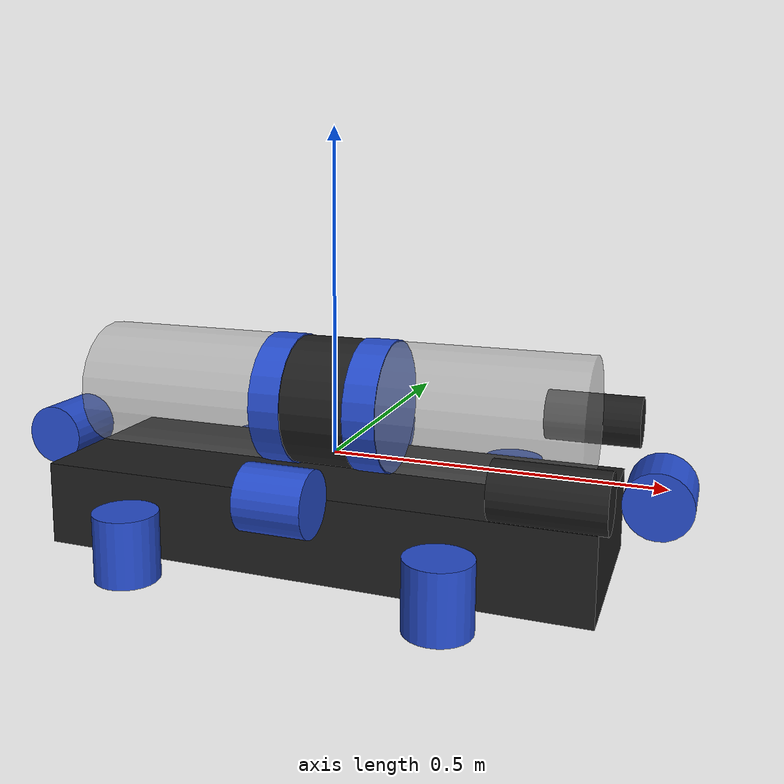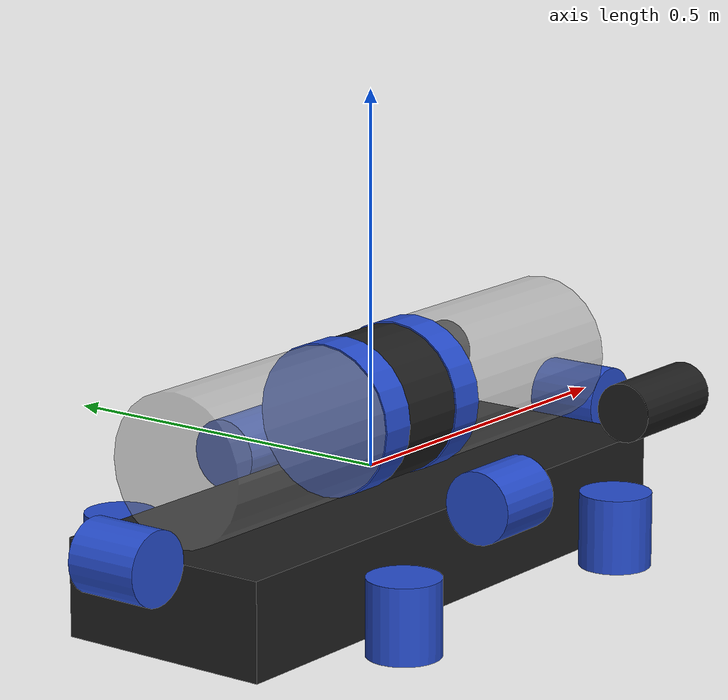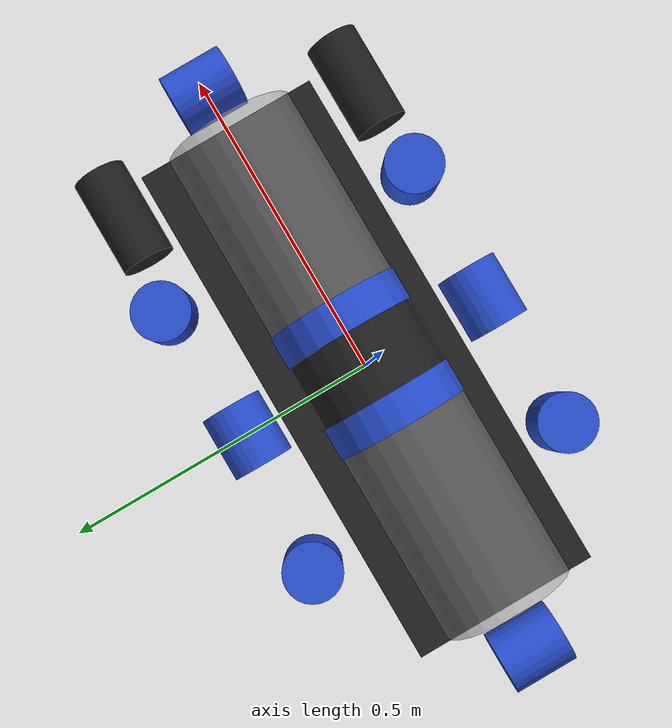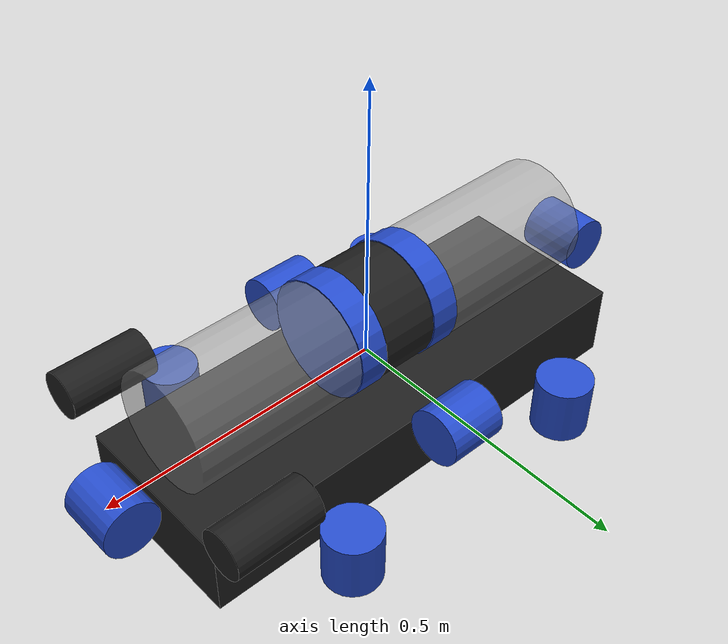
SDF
<?xml version='1.0'?>
<sdf version='1.6'>

  <model name='robosub_cobalt'>
    <pose>0 0 0.0 0 0 0</pose>
    <self_collide> 0 </self_collide>

    <joint name="hull_frame" type="fixed">
        <parent>frame</parent>
        <child>hull</child>
    </joint>

    <joint name='dive_front_left_frame' type="fixed">
        <parent>frame</parent>
        <child>dive_front_left</child>
    </joint>

    <joint name='dive_front_right_frame' type="fixed">
        <parent>frame</parent>
        <child>dive_front_right</child>
    </joint>

    <joint name='dive_back_left_frame' type="fixed">
        <parent>frame</parent>
        <child>dive_back_left</child>
    </joint>

    <joint name='dive_back_right_frame' type="fixed">
        <parent>frame</parent>
        <child>dive_back_right</child>
    </joint>

    <joint name='strafe_front_frame' type="fixed">
        <parent>frame</parent>
        <child>strafe_front</child>
    </joint>

    <joint name='strafe_back_frame' type="fixed">
        <parent>frame</parent>
        <child>strafe_back</child>
    </joint>

    <joint name='forward_left_frame' type="fixed">
        <parent>frame</parent>
        <child>forward_left</child>
    </joint>

    <joint name='forward_right_frame' type="fixed">
        <parent>frame</parent>
        <child>forward_right</child>
    </joint>

    <joint name='left_camera_frame' type="fixed">
        <parent>frame</parent>
        <child>left_camera</child>
    </joint>

    <joint name='right_camera_frame' type="fixed">
        <parent>frame</parent>
        <child>right_camera</child>
    </joint>

    <joint name='bottom_camera_frame' type="fixed">
        <parent>frame</parent>
        <child>bottom_camera</child>
    </joint>

    <joint name='hydrophone_h0_frame' type="fixed">
        <parent>frame</parent>
        <child>hydrophone_h0</child>
    </joint>

    <joint name='hydrophone_hx_frame' type="fixed">
        <parent>frame</parent>
        <child>hydrophone_hx</child>
    </joint>

    <joint name='hydrophone_hy_frame' type="fixed">
        <parent>frame</parent>
        <child>hydrophone_hy</child>
    </joint>

    <joint name='hydrophone_hz_frame' type="fixed">
        <parent>frame</parent>
        <child>hydrophone_hz</child>
    </joint>

    <joint name='imu_frame' type="fixed">
        <parent>frame</parent>
        <child>imu_link</child>
    </joint>

    <link name='hull'>
      <pose>0 0 .082 1.57079632679 0 1.57079632679 </pose>
      <inertial>
        <mass>10</mass>
      </inertial>

      <visual name='bulkhead_visual'>
        <geometry>
              <cylinder>
                <radius>0.1</radius>
                <length>.13</length>
              </cylinder>
        </geometry>
        <material>
            <script>
              <uri>file://media/materials/scripts/gazebo.material</uri>
              <name>Gazebo/Black</name>
            </script>
          </material>
      </visual>

      <visual name='front_ring_visual'>
      <pose>0 0 .075 0 0 0</pose>
        <geometry>
              <cylinder>
                <radius>0.102</radius>
                <length>.05</length>
              </cylinder>
        </geometry>
        <material>
            <script>
              <uri>file://media/materials/scripts/gazebo.material</uri>
              <name>Gazebo/Blue</name>
            </script>
          </material>
      </visual>
      <visual name='rear_ring_visual'>
      <pose>0 0 -.075 0 0 0</pose>
        <geometry>
              <cylinder>
                <radius>0.102</radius>
                <length>.05</length>
              </cylinder>
        </geometry>
        <material>
            <script>
              <uri>file://media/materials/scripts/gazebo.material</uri>
              <name>Gazebo/Blue</name>
            </script>
          </material>
      </visual>
      <visual name='front_tube_visual'>
      <pose>0 0 .235 0 0 0</pose>
        <geometry>
              <cylinder>
                <radius>0.1</radius>
                <length>.32</length>
              </cylinder>
        </geometry>
        <material>
            <script>
              <uri>file://media/materials/scripts/gazebo.material</uri>
              <name>Gazebo/GreyTransparent</name>
            </script>
            <diffuse>0.6 0.6 0.6 0.6</diffuse>
          </material>
      </visual>

      <visual name='rear_tube_visual'>
      <pose>0 0 -.235 0 0 0</pose>
        <geometry>
              <cylinder>
                <radius>0.1</radius>
                <length>.32</length>
              </cylinder>
        </geometry>
        <material>
            <script>
              <uri>file://media/materials/scripts/gazebo.material</uri>
              <name>Gazebo/GreyTransparent</name>
            </script>
            <diffuse>0.6 0.6 0.6 0.6</diffuse>
          </material>
      </visual>
      <collision name='hull_collision'>
        <geometry>
              <cylinder>
                <radius>0.1</radius>
                <length>.77</length>
              </cylinder>
            </geometry>
      </collision>
      <velocity_decay>
          <linear>0.002</linear>
          <angular>0.002</angular>
      </velocity_decay>
    </link>

    <link name='hydrophone_h0'>
      <pose> 0 0 0 0 0 0 </pose>
      <inertial>
        <mass> 0.001 </mass>
      </inertial>
    </link>

    <link name='hydrophone_hx'>
      <pose> 0.015 0 0 0 0 0 </pose>
      <inertial>
        <mass> 0.001 </mass>
      </inertial>
    </link>

    <link name='hydrophone_hy'>
      <pose> 0 0.015 0 0 0 0 </pose>
      <inertial>
        <mass> 0.001 </mass>
      </inertial>
    </link>

    <link name='hydrophone_hz'>
      <pose> 0 0 0.015 0 0 0 </pose>
      <inertial>
        <mass> 0.001 </mass>
      </inertial>
    </link>

    <link name='frame'>
      <pose>0 0 -0.088 0 0 0</pose>
      <inertial>
        <mass>16.5</mass>
      </inertial>

      <visual name='frame_visual'>
        <geometry>
              <box>
                <size>.85 .3 .13</size>
              </box>
            </geometry>
          <material>
            <script>
              <uri>file://media/materials/scripts/gazebo.material</uri>
              <name>Gazebo/FlatBlack</name>
            </script>
          </material>
      </visual>

      <collision name='frame_collision'>
        <geometry>
              <box>
                <size>.85 .3 .13</size>
              </box>
            </geometry>
      </collision>
      <velocity_decay>
          <linear>0.002</linear>
          <angular>0.002</angular>
      </velocity_decay>
    </link>

    <link name='dive_front_left'>
      <pose>0.235 0.23 -0.1 0 3.14159 0</pose>
      <inertial>
        <mass>0.344</mass>
      </inertial>
      <visual name='dive_front_left_visual'>
        <geometry>
          <cylinder>
            <radius>0.0485</radius>
            <length>0.101</length>
          </cylinder>
        </geometry>
      <material>
        <script>
          <uri>file://media/materials/scripts/gazebo.material</uri>
          <name>Gazebo/Blue</name>
        </script>
      </material>
      </visual>
      <collision name='dive_front_left_collision'>
        <geometry>
          <cylinder>
            <radius>0.0485</radius>
            <length>0.101</length>
          </cylinder>
        </geometry>
      </collision>
    </link>

    <link name='dive_front_right'>
      <pose>0.235 -0.23 -0.1 0 3.14159 0</pose>
      <inertial>
        <mass>0.344</mass>
      </inertial>
      <visual name='dive_front_right_visual'>
        <geometry>
          <cylinder>
            <radius>0.0485</radius>
            <length>0.101</length>
          </cylinder>
        </geometry>
      <material>
        <script>
          <uri>file://media/materials/scripts/gazebo.material</uri>
          <name>Gazebo/Blue</name>
        </script>
      </material>
      </visual>
      <collision name='dive_front_right_collision'>
        <geometry>
          <cylinder>
            <radius>0.0485</radius>
            <length>0.101</length>
          </cylinder>
        </geometry>
      </collision>
    </link>

    <link name='dive_back_left'>
      <pose>-0.235 0.23 -0.1 0 3.14159 0</pose>
      <inertial>
        <mass>0.344</mass>
      </inertial>
      <visual name='dive_back_left_visual'>
        <geometry>
          <cylinder>
            <radius>0.0485</radius>
            <length>0.101</length>
          </cylinder>
        </geometry>
      <material>
        <script>
          <uri>file://media/materials/scripts/gazebo.material</uri>
          <name>Gazebo/Blue</name>
        </script>
      </material>
      </visual>
      <collision name='dive_back_left_collision'>
        <geometry>
          <cylinder>
            <radius>0.0485</radius>
            <length>0.101</length>
          </cylinder>
        </geometry>
      </collision>
    </link>

    <link name='dive_back_right'>
      <pose>-0.235 -0.23 -0.1 0 3.14159 0</pose>
      <inertial>
        <mass>0.344</mass>
      </inertial>
      <visual name='dive_back_right_visual'>
        <geometry>
          <cylinder>
            <radius>0.0485</radius>
            <length>0.101</length>
          </cylinder>
        </geometry>
      <material>
        <script>
          <uri>file://media/materials/scripts/gazebo.material</uri>
          <name>Gazebo/Blue</name>
        </script>
      </material>
      </visual>
      <collision name='dive_back_right_collision'>
        <geometry>
          <cylinder>
            <radius>0.0485</radius>
            <length>0.101</length>
          </cylinder>
        </geometry>
      </collision>
    </link>

    <link name='strafe_front'>
      <pose>0.49 0 -0.01 -1.57079632679 0 0</pose>
      <inertial>
        <mass>0.344</mass>
      </inertial>
      <visual name='strafe_front_visual'>
        <geometry>
          <cylinder>
            <radius>0.0485</radius>
            <length>0.101</length>
          </cylinder>
        </geometry>
      <material>
        <script>
          <uri>file://media/materials/scripts/gazebo.material</uri>
          <name>Gazebo/Blue</name>
        </script>
      </material>
      </visual>
      <collision name='strafe_front_collision'>
        <geometry>
          <cylinder>
            <radius>0.0485</radius>
            <length>0.101</length>
          </cylinder>
        </geometry>
      </collision>
    </link>

    <link name='strafe_back'>
      <pose>-0.49 0 -0.01 -1.57079632679 0 0</pose>
      <inertial>
        <mass>0.344</mass>
      </inertial>
      <visual name='strafe_back_visual'>
        <geometry>
          <cylinder>
            <radius>0.0485</radius>
            <length>0.101</length>
          </cylinder>
        </geometry>
      <material>
        <script>
          <uri>file://media/materials/scripts/gazebo.material</uri>
          <name>Gazebo/Blue</name>
        </script>
      </material>
      </visual>
      <collision name='strafe_back_collision'>
        <geometry>
          <cylinder>
            <radius>0.0485</radius>
            <length>0.101</length>
          </cylinder>
        </geometry>
      </collision>
    </link>

    <link name='forward_left'>
      <pose>0 0.2075 -0.01 0 -1.57079632679 0</pose>
      <inertial>
        <mass>0.344</mass>
      </inertial>
      <visual name='forward_left_visual'>
        <geometry>
          <cylinder>
            <radius>0.0485</radius>
            <length>0.101</length>
          </cylinder>
        </geometry>
      <material>
        <script>
          <uri>file://media/materials/scripts/gazebo.material</uri>
          <name>Gazebo/Blue</name>
        </script>
      </material>
      </visual>
      <collision name='forward_left_collision'>
        <geometry>
          <cylinder>
            <radius>0.0485</radius>
            <length>0.101</length>
          </cylinder>
        </geometry>
      </collision>
    </link>

    <link name='forward_right'>
      <pose>0 -0.2075 -0.01 0 -1.57079632679 0</pose>
      <inertial>
        <mass>0.344</mass>
      </inertial>
      <visual name='forward_right_visual'>
        <geometry>
          <cylinder>
            <radius>0.0485</radius>
            <length>0.101</length>
          </cylinder>
        </geometry>
      <material>
        <script>
          <uri>file://media/materials/scripts/gazebo.material</uri>
          <name>Gazebo/Blue</name>
        </script>
      </material>
      </visual>
      <collision name='forward_right_collision'>
        <geometry>
          <cylinder>
            <radius>0.0485</radius>
            <length>0.101</length>
          </cylinder>
        </geometry>
      </collision>
    </link>

    <link name='left_camera'>
      <pose>0.37 0.20 0.04 0 1.57079632679 0</pose>
      <inertial>
        <mass>0.73</mass>
      </inertial>
      <visual name='left_camera_visual'>
        <geometry>
          <cylinder>
            <radius>0.0405</radius>
            <length>0.15</length>
          </cylinder>
        </geometry>
      <material>
        <script>
          <uri>file://media/materials/scripts/gazebo.material</uri>
          <name>Gazebo/Black</name>
        </script>
      </material>
      </visual>
      <collision name='left_camera_collision'>
        <geometry>
          <cylinder>
            <radius>0.0405</radius>
            <length>0.15</length>
          </cylinder>
        </geometry>
      </collision>
      <sensor name="left" type="wideanglecamera">
          <pose>0 0 0.14 0 -1.570796 0</pose>
          <camera>
              <horizontal_fov>3.1415</horizontal_fov>
              <image>
                  <width>1384</width>
                  <height>1032</height>
              </image>
              <clip>
                  <near>0.001</near>
                  <far>100</far>
              </clip>
              <lens>
                  <type>custom</type>
                  <custom_function>
                      <c1>685.4</c1>
                      <c2>525.2</c2>
                      <f>307.53251966606937</f>
                      <fun>tan</fun>
                  </custom_function>
                  <scale_to_hfov>true</scale_to_hfov>
                  <cutoff_angle>1.57075</cutoff_angle>
                  <env_texture_size>512</env_texture_size>
              </lens>
              <distortion>
                <k1>-.16492342967649815</k1>
                <k2>0.016187172468110342</k2>
                <k3>-0.00038951913220274415</k3>
                <p1>0</p1>
                <p2>0</p2>
                <center>0 0</center>
              </distortion>
          </camera>
          <plugin name="left_camera_controller" filename="libgazebo_ros_camera.so">
              <cameraName>left</cameraName>
              <imageTopicName>/camera/left/image_raw</imageTopicName>
          </plugin>
          <always_on>1</always_on>
          <update_rate>5</update_rate>
      </sensor>
    </link>

    <link name='right_camera'>
      <pose>0.37 -0.20 0.04 0 1.57079632679 0</pose>
      <inertial>
        <mass>0.73</mass>
      </inertial>
      <visual name='right_camera_visual'>
        <geometry>
          <cylinder>
            <radius>0.0405</radius>
            <length>0.15</length>
          </cylinder>
        </geometry>
      <material>
        <script>
          <uri>file://media/materials/scripts/gazebo.material</uri>
          <name>Gazebo/Black</name>
        </script>
      </material>
      </visual>
      <collision name='right_camera_collision'>
        <geometry>
          <cylinder>
            <radius>0.0405</radius>
            <length>0.15</length>
          </cylinder>
        </geometry>
      </collision>
      <sensor name="right" type="wideanglecamera">
          <pose>0 0 0.14 0 -1.570796 0</pose>
          <camera>
              <horizontal_fov>3.1415</horizontal_fov>
              <image>
                  <width>1384</width>
                  <height>1032</height>
              </image>
              <clip>
                  <near>0.1</near>
                  <far>100</far>
              </clip>
              <lens>
                  <type>custom</type>
                  <custom_function>
                      <c1>667.1</c1>
                      <c2>536.7</c2>
                      <f>317.86251966606937</f>
                      <fun>tan</fun>
                  </custom_function>
                  <scale_to_hfov>true</scale_to_hfov>
                  <cutoff_angle>1.57075</cutoff_angle>
                  <env_texture_size>512</env_texture_size>
              </lens>
              <distortion>
                <k1>-.16492342967649815</k1>
                <k2>0.016187172468110342</k2>
                <k3>-0.00038951913220274415</k3>
                <p1>0</p1>
                <p2>0</p2>
                <center>0 0</center>
              </distortion>
          </camera>
          <plugin name="right_camera_controller" filename="libgazebo_ros_camera.so">
              <cameraName>right</cameraName>
              <imageTopicName>/camera/right/image_raw</imageTopicName>
          </plugin>
          <always_on>1</always_on>
          <update_rate>5</update_rate>
      </sensor>
    </link>

    <link name='bottom_camera'>
      <pose>0 0 -0.1 0 3.14159265358 0</pose>
      <inertial>
        <mass>0.73</mass>
      </inertial>
      <visual name='bottom_camera_visual'>
        <geometry>
          <cylinder>
            <radius>0.0405</radius>
            <length>0.15</length>
          </cylinder>
        </geometry>
      <material>
        <script>
          <uri>file://media/materials/scripts/gazebo.material</uri>
          <name>Gazebo/Black</name>
        </script>
      </material>
      </visual>
      <collision name='bottom_camera_collision'>
        <geometry>
          <cylinder>
            <radius>0.0405</radius>
            <length>0.15</length>
          </cylinder>
        </geometry>
      </collision>
      <sensor name="bottom" type="wideanglecamera">
          <pose>0 0 0.14 0 -1.570796 0</pose>
          <camera>
              <horizontal_fov>3.1415</horizontal_fov>
              <image>
                  <width>1384</width>
                  <height>1032</height>
              </image>
              <clip>
                  <near>0.1</near>
                  <far>100</far>
              </clip>
              <lens>
                  <type>custom</type>
                  <custom_function>
                      <c1>691.5</c1>
                      <c2>515.5</c2>
                      <f>341.43251966606937</f>
                      <fun>tan</fun>
                  </custom_function>
                  <scale_to_hfov>true</scale_to_hfov>
                  <cutoff_angle>1.57075</cutoff_angle>
                  <env_texture_size>512</env_texture_size>
              </lens>
              <distortion>
                <k1>-.16492342967649815</k1>
                <k2>0.016187172468110342</k2>
                <k3>-0.00038951913220274415</k3>
                <p1>0</p1>
                <p2>0</p2>
                <center>0 0</center>
              </distortion>
          </camera>
          <plugin name="bottom_camera_controller" filename="libgazebo_ros_camera.so">
              <cameraName>bottom</cameraName>
              <imageTopicName>/camera/bottom/image_raw</imageTopicName>
          </plugin>
          <always_on>1</always_on>
          <update_rate>5</update_rate>
      </sensor>
    </link>

    <allow_auto_disable>0</allow_auto_disable>

    <plugin name="thruster" filename="plugins/libthruster.so"/>

    <plugin name="buoyancy_improved" filename="plugins/libbuoyancy_improved.so">
      <fluid_density>1000</fluid_density>
      <link name="frame">
        <volume>0.0026</volume>
      </link>

      <!-- thrusters -->
      <link name="dive_back_right">
        <volume>0.000334</volume>
      </link>
      <link name="dive_back_left">
        <volume>0.000334</volume>
      </link>
      <link name="dive_front_right">
        <volume>0.000334</volume>
      </link>
      <link name="dive_front_left">
        <volume>0.000334</volume>
      </link>
      <link name="strafe_front">
        <volume>0.000334</volume>
      </link>
      <link name="strafe_back">
        <volume>0.000334</volume>
      </link>
      <link name="forward_right">
        <volume>0.000334</volume>
      </link>
      <link name="forward_left">
        <volume>0.000334</volume>
      </link>
    </plugin>

    <link name="imu_link">
      <inertial>
        <mass>0.1</mass>
      </inertial>
      <sensor name="sim_imu" type='imu'>
        <plugin name="sim_imu" filename="libgazebo_ros_imu_sensor.so">
          <initial_orientation_as_reference>false
          </initial_orientation_as_reference>
          <ros>
            <namespace>gazebo</namespace>
          </ros>
        </plugin>
        <always_on>1</always_on>
        <update_rate>20.0</update_rate>
        <imu>
          <angular_velocity>
            <x>
              <noise type="gaussian">
                <mean>0.0</mean>
                <stddev>0.0</stddev>
                <bias_mean>0.0</bias_mean>
                <bias_stddev>0.0</bias_stddev>
              </noise>
            </x>
            <y>
              <noise type="gaussian">
                <mean>0.0</mean>
                <stddev>0.0</stddev>
                <bias_mean>0.0</bias_mean>
                <bias_stddev>0.0</bias_stddev>
              </noise>
            </y>
            <z>
              <noise type="gaussian">
                <mean>0.0</mean>
                <stddev>0.0</stddev>
                <bias_mean>0.0</bias_mean>
                <bias_stddev>0.0</bias_stddev>
              </noise>
            </z>
          </angular_velocity>
          <linear_acceleration>
            <x>
              <noise type="gaussian">
                <mean>0.0</mean>
                <stddev>0.0</stddev>
                <bias_mean>0.0</bias_mean>
                <bias_stddev>0.0</bias_stddev>
              </noise>
            </x>
            <y>
              <noise type="gaussian">
                <mean>0.0</mean>
                <stddev>0.0</stddev>
                <bias_mean>0.0</bias_mean>
                <bias_stddev>0.0</bias_stddev>
              </noise>
            </y>
            <z>
              <noise type="gaussian">
                <mean>0.0</mean>
                <stddev>0.0</stddev>
                <bias_mean>0.0</bias_mean>
                <bias_stddev>0.0</bias_stddev>
              </noise>
            </z>
          </linear_acceleration>
        </imu>
      </sensor>
    </link>

   <plugin name="marker_dropper" filename="plugins/libmarkerdrop.so"/>
   <plugin name="torpedo_shooter" filename="plugins/libtorpedoshoot.so"/>
  </model>
</sdf>
